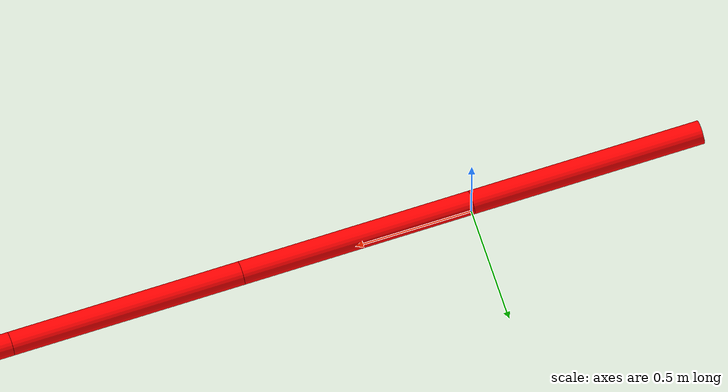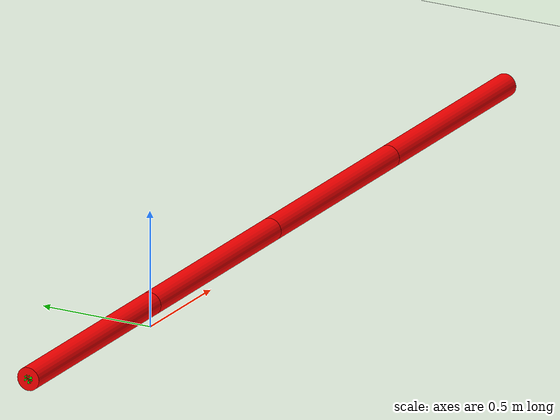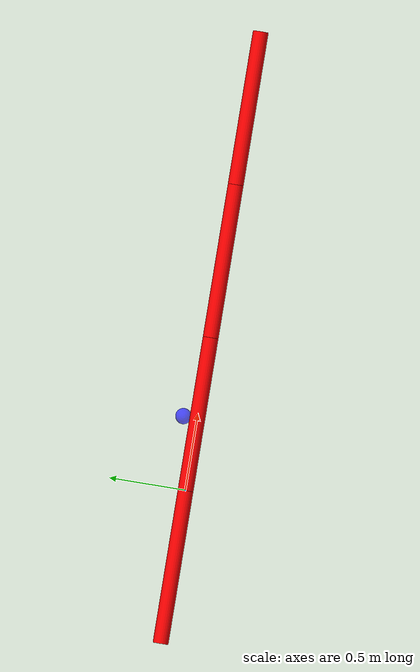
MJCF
<mujoco>
	<asset>
		<material name="red"   rgba="1 0 0 1"/>
		<material name="green" rgba="0 1 0 1"/>
		<material name="blue"  rgba="0 0 1 1"/>
		<material name="white" rgba="1 1 1 1"/>
		<material name="gray"  rgba=".5 .5 .5 1"/>
	</asset>

    <worldbody>
        <light diffuse=".5 .5 .5" pos="0 0 10" dir="0 0 -1"/>
        <geom type="plane" size="4 3 0.1" rgba="1 1 1 1"/>

        <body name="link 0-0" pos="-0.5 0 0.1" euler="0 90 0">
            <joint name="joint 0-0" type="hinge" axis="-1 0 0" pos="0 0 -0.5"/>
            <geom name="geom link 0-0" type="cylinder" size="0.05 0.5" material="red"/>
            <body name="link 0-1" pos="0 0 1.0" euler="0 0 0">
                <joint name="joint 0-1" type="hinge" axis="-1 0 0" pos="0 0 -0.5"/>
                <geom name="geom link 0-1" type="cylinder" size="0.05 0.5" material="red"/>
            </body>
        </body>

        <body name="link 1-0" pos="1.5 0 0.1" euler="0 90 0">
            <joint name="joint 1-0" type="hinge" axis="-1 0 0" pos="0 0 -0.5"/>
            <geom name="geom link 1-0" type="cylinder" size="0.05 0.5" material="red"/>
            <body name="link 1-1" pos="0 0 1.0" euler="0 0 0">
                <joint name="joint 1-1" type="hinge" axis="-1 0 0" pos="0 0 -0.5"/>
                <geom name="geom link 1-1" type="cylinder" size="0.05 0.5" material="red"/>
            </body>
        </body>

        <body name="link 0-0 shade" pos="-0.5 0 0.1" euler="0 90 0">
            <joint name="joint 0-0 shade" type="hinge" axis="-1 0 0" pos="0 0 -0.5"/>
            <geom name="geom link 0-0 shade" type="cylinder" size="0.02 0.5" material="green" contype="0" conaffinity="0" />
            <body name="link 0-1 shade" pos="0 0 1.0" euler="0 0 0">
                <joint name="joint 0-1 shade" type="hinge" axis="-1 0 0" pos="0 0 -0.5"/>
                <geom name="geom link 0-1 shade" type="cylinder" size="0.02 0.5" material="green" contype="0" conaffinity="0" />
            </body>
        </body>

        <body name="link 1-0 shade" pos="1.5 0 0.1" euler="0 90 0">
            <joint name="joint 1-0 shade" type="hinge" axis="-1 0 0" pos="0 0 -0.5"/>
            <geom name="geom link 1-0 shade" type="cylinder" size="0.02 0.5" material="green" contype="0" conaffinity="0" />
            <body name="link 1-1 shade" pos="0 0 1.0" euler="0 0 0">
                <joint name="joint 1-1 shade" type="hinge" axis="-1 0 0" pos="0 0 -0.5"/>
                <geom name="geom link 1-1 shade" type="cylinder" size="0.02 0.5" material="green" contype="0" conaffinity="0" />
            </body>
        </body>

        <body name="sudo sphere">
            <geom name="sudo sphere 1" type="sphere" size="0.1" pos="0.0 0.0 -100.0" contype="0" conaffinity="0"  material="blue"/>
        </body>

    </worldbody>
</mujoco>
